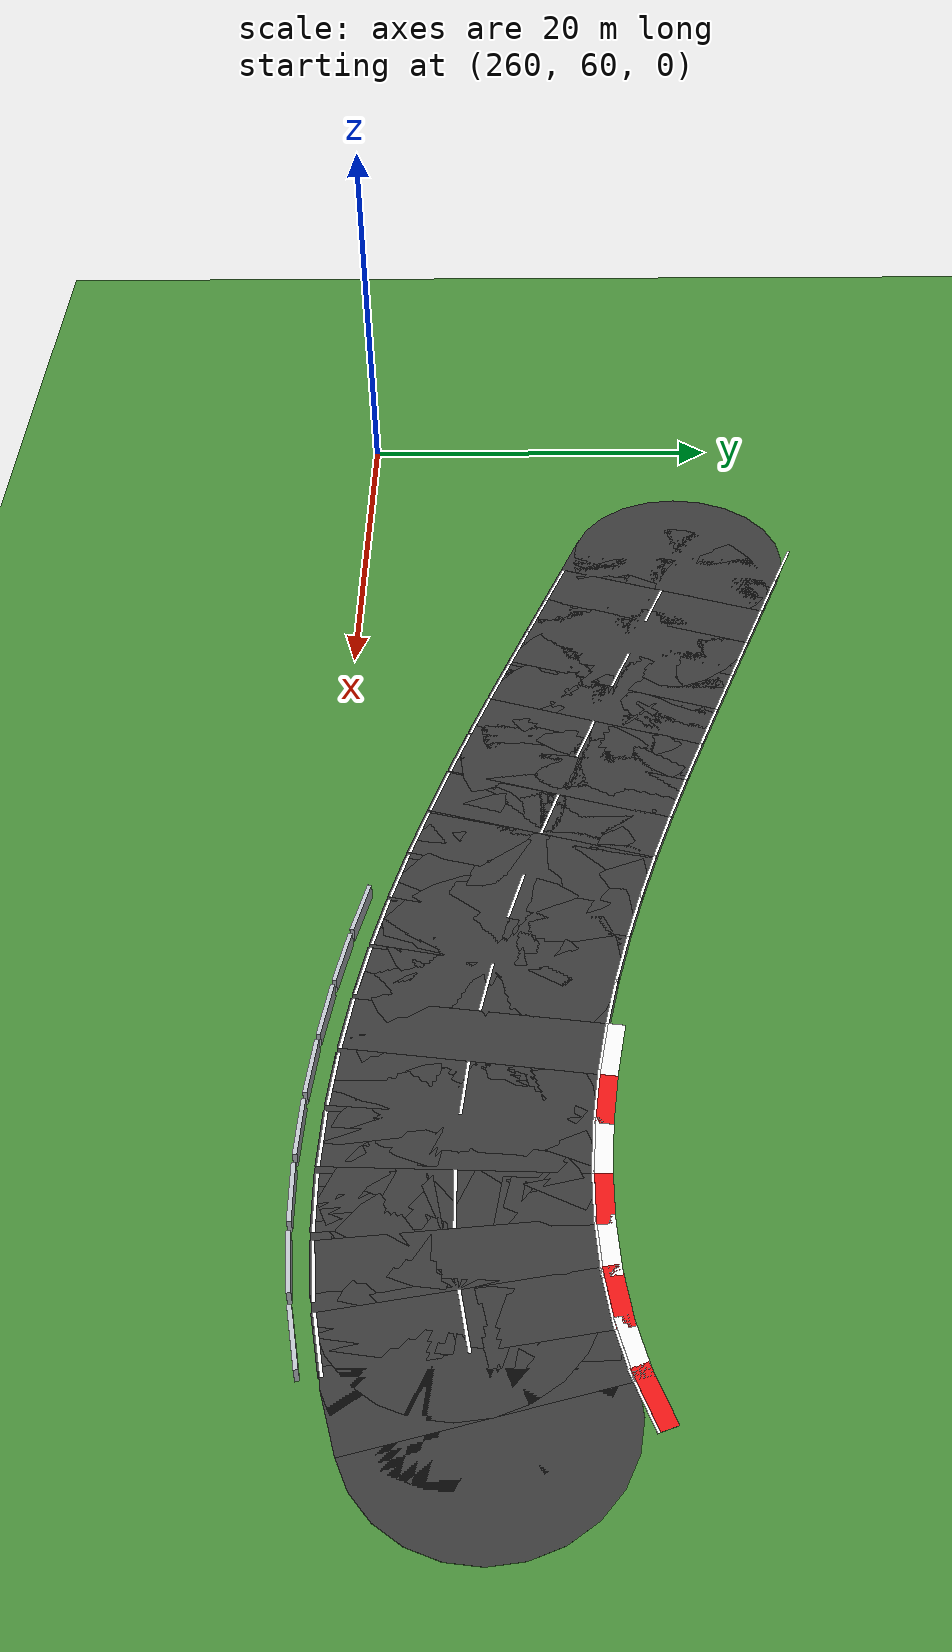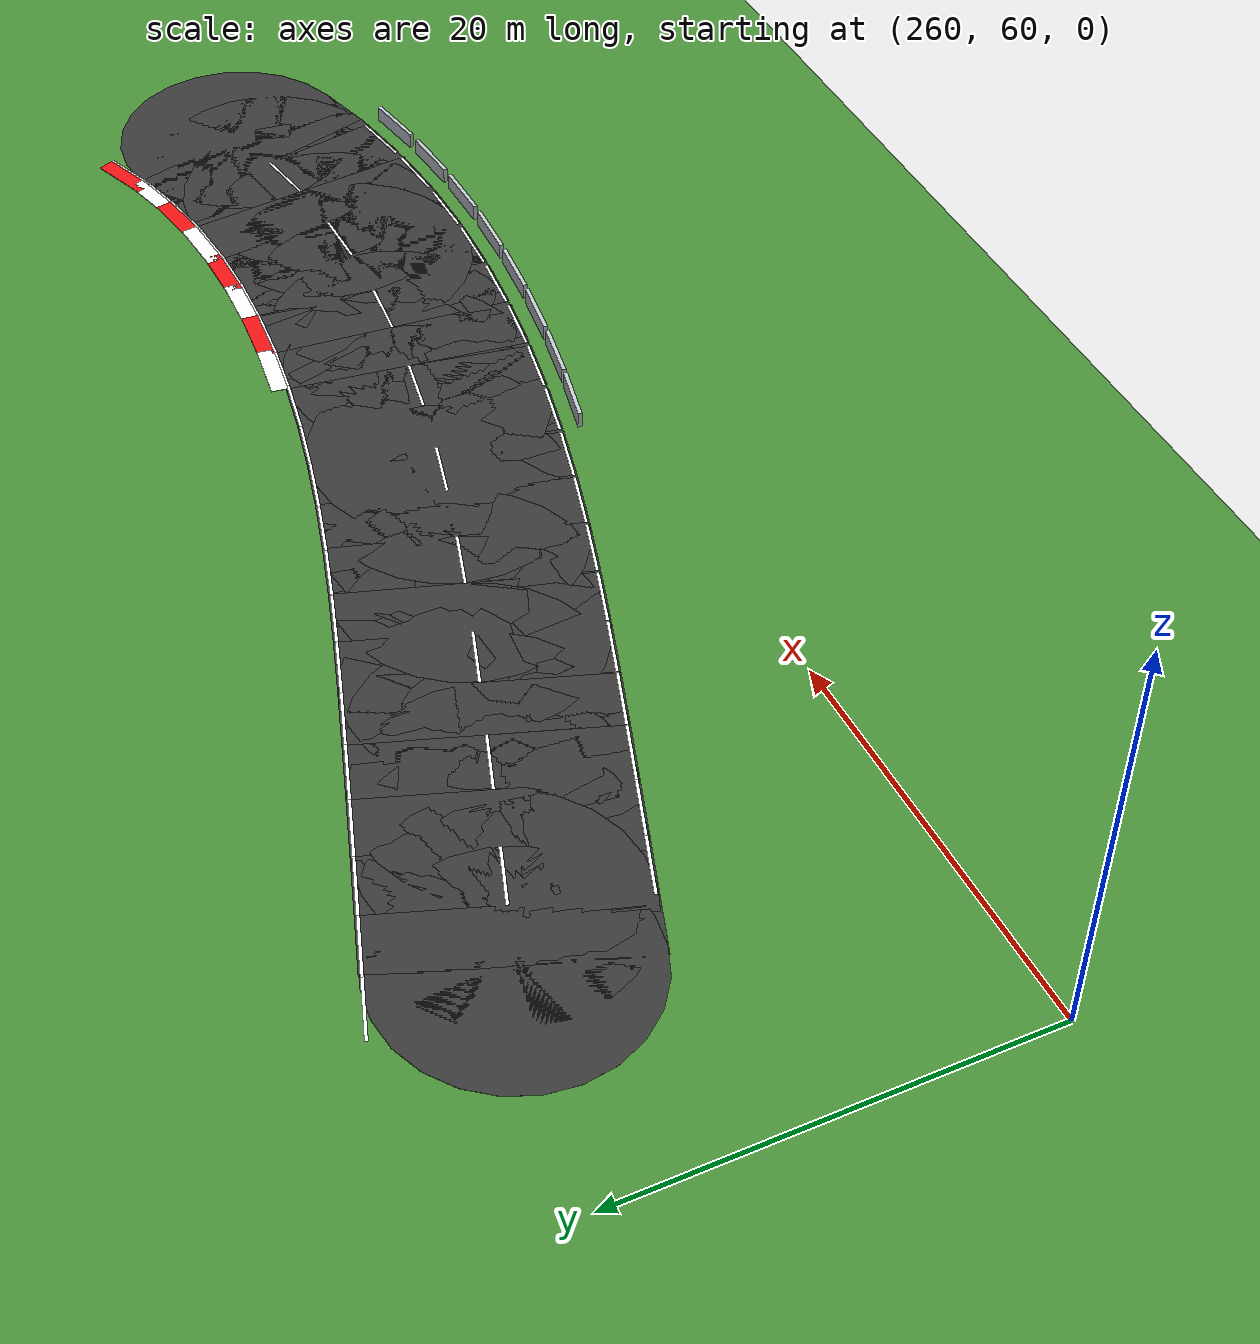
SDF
<sdf version="1.6">
 <world name="sem_silesia_ring_2026">
  <model name="ground_plane">
   <static>true</static>
   <link name="link">
    <collision name="collision">
     <geometry><plane><normal>0 0 1</normal><size>1200 1200</size></plane></geometry>
     <surface><friction><ode><mu>0.6</mu><mu2>0.6</mu2></ode></friction></surface>
    </collision>
    <visual name="visual">
     <geometry><plane><normal>0 0 1</normal><size>1200 1200</size></plane></geometry>
     <material><ambient>0.28 0.55 0.22 1</ambient><diffuse>0.28 0.55 0.22 1</diffuse></material>
    </visual>
   </link>
  </model>
  <model name="wl_L_s118">
   <static>true</static>
   <pose>271.6509 83.9622 0.0070 0 0 -0.3440</pose>
   <link name="link">
    <visual name="v">
     <geometry><box><size>3.0025 0.1500 0.0080</size></box></geometry>
     <material><ambient>0.95 0.95 0.95 1</ambient><diffuse>0.95 0.95 0.95 1</diffuse></material>
    </visual>
   </link>
  </model>
  <model name="road_s119">
   <static>true</static>
   <pose>272.5056 77.4449 0.0030 0 0 -0.3422</pose>
   <link name="link">
    <visual name="v">
     <geometry><box><size>3.0025 12.0000 0.0060</size></box></geometry>
     <material><ambient>0.22 0.22 0.22 1</ambient><diffuse>0.22 0.22 0.22 1</diffuse></material>
    </visual>
    <collision name="c">
     <geometry><box><size>3.0025 12.0000 0.0060</size></box></geometry>
     <surface><friction><ode><mu>0.9</mu><mu2>0.9</mu2></ode></friction></surface>
    </collision>
   </link>
  </model>
  <model name="road_jnt119">
   <static>true</static>
   <pose>271.0913 77.9486 0.0030 0 0 0</pose>
   <link name="link">
    <visual name="v">
     <geometry><cylinder><radius>6.0000</radius><length>0.0060</length></cylinder></geometry>
     <material><ambient>0.22 0.22 0.22 1</ambient><diffuse>0.22 0.22 0.22 1</diffuse></material>
    </visual>
    <collision name="c">
     <geometry><cylinder><radius>6.0000</radius><length>0.0060</length></cylinder></geometry>
     <surface><friction><ode><mu>0.9</mu><mu2>0.9</mu2></ode></friction></surface>
    </collision>
   </link>
  </model>
  <model name="wl_L_s119">
   <static>true</static>
   <pose>274.4684 82.9558 0.0070 0 0 -0.3422</pose>
   <link name="link">
    <visual name="v">
     <geometry><box><size>3.0025 0.1500 0.0080</size></box></geometry>
     <material><ambient>0.95 0.95 0.95 1</ambient><diffuse>0.95 0.95 0.95 1</diffuse></material>
    </visual>
   </link>
  </model>
  <model name="road_s120">
   <static>true</static>
   <pose>275.3350 76.4401 0.0030 0 0 -0.3403</pose>
   <link name="link">
    <visual name="v">
     <geometry><box><size>3.0025 12.0000 0.0060</size></box></geometry>
     <material><ambient>0.22 0.22 0.22 1</ambient><diffuse>0.22 0.22 0.22 1</diffuse></material>
    </visual>
    <collision name="c">
     <geometry><box><size>3.0025 12.0000 0.0060</size></box></geometry>
     <surface><friction><ode><mu>0.9</mu><mu2>0.9</mu2></ode></friction></surface>
    </collision>
   </link>
  </model>
  <model name="road_jnt120">
   <static>true</static>
   <pose>273.9198 76.9412 0.0030 0 0 0</pose>
   <link name="link">
    <visual name="v">
     <geometry><cylinder><radius>6.0000</radius><length>0.0060</length></cylinder></geometry>
     <material><ambient>0.22 0.22 0.22 1</ambient><diffuse>0.22 0.22 0.22 1</diffuse></material>
    </visual>
    <collision name="c">
     <geometry><cylinder><radius>6.0000</radius><length>0.0060</length></cylinder></geometry>
     <surface><friction><ode><mu>0.9</mu><mu2>0.9</mu2></ode></friction></surface>
    </collision>
   </link>
  </model>
  <model name="wl_L_s120">
   <static>true</static>
   <pose>277.2876 81.9546 0.0070 0 0 -0.3403</pose>
   <link name="link">
    <visual name="v">
     <geometry><box><size>3.0025 0.1500 0.0080</size></box></geometry>
     <material><ambient>0.95 0.95 0.95 1</ambient><diffuse>0.95 0.95 0.95 1</diffuse></material>
    </visual>
   </link>
  </model>
  <model name="wl_R_s120">
   <static>true</static>
   <pose>273.3824 70.9256 0.0070 0 0 -0.3403</pose>
   <link name="link">
    <visual name="v">
     <geometry><box><size>3.0025 0.1500 0.0080</size></box></geometry>
     <material><ambient>0.95 0.95 0.95 1</ambient><diffuse>0.95 0.95 0.95 1</diffuse></material>
    </visual>
   </link>
  </model>
  <model name="cd_s120">
   <static>true</static>
   <pose>275.3350 76.4401 0.0070 0 0 -0.3403</pose>
   <link name="link">
    <visual name="v">
     <geometry><box><size>3.0025 0.1500 0.0080</size></box></geometry>
     <material><ambient>0.95 0.95 0.95 1</ambient><diffuse>0.95 0.95 0.95 1</diffuse></material>
    </visual>
   </link>
  </model>
  <model name="road_s121">
   <static>true</static>
   <pose>278.1663 75.4406 0.0030 0 0 -0.3384</pose>
   <link name="link">
    <visual name="v">
     <geometry><box><size>3.0025 12.0000 0.0060</size></box></geometry>
     <material><ambient>0.22 0.22 0.22 1</ambient><diffuse>0.22 0.22 0.22 1</diffuse></material>
    </visual>
    <collision name="c">
     <geometry><box><size>3.0025 12.0000 0.0060</size></box></geometry>
     <surface><friction><ode><mu>0.9</mu><mu2>0.9</mu2></ode></friction></surface>
    </collision>
   </link>
  </model>
  <model name="road_jnt121">
   <static>true</static>
   <pose>276.7502 75.9390 0.0030 0 0 0</pose>
   <link name="link">
    <visual name="v">
     <geometry><cylinder><radius>6.0000</radius><length>0.0060</length></cylinder></geometry>
     <material><ambient>0.22 0.22 0.22 1</ambient><diffuse>0.22 0.22 0.22 1</diffuse></material>
    </visual>
    <collision name="c">
     <geometry><cylinder><radius>6.0000</radius><length>0.0060</length></cylinder></geometry>
     <surface><friction><ode><mu>0.9</mu><mu2>0.9</mu2></ode></friction></surface>
    </collision>
   </link>
  </model>
  <model name="wl_L_s121">
   <static>true</static>
   <pose>280.1085 80.9588 0.0070 0 0 -0.3384</pose>
   <link name="link">
    <visual name="v">
     <geometry><box><size>3.0025 0.1500 0.0080</size></box></geometry>
     <material><ambient>0.95 0.95 0.95 1</ambient><diffuse>0.95 0.95 0.95 1</diffuse></material>
    </visual>
   </link>
  </model>
  <model name="wl_R_s121">
   <static>true</static>
   <pose>276.2241 69.9224 0.0070 0 0 -0.3384</pose>
   <link name="link">
    <visual name="v">
     <geometry><box><size>3.0025 0.1500 0.0080</size></box></geometry>
     <material><ambient>0.95 0.95 0.95 1</ambient><diffuse>0.95 0.95 0.95 1</diffuse></material>
    </visual>
   </link>
  </model>
  <model name="road_s122">
   <static>true</static>
   <pose>280.9995 74.4465 0.0030 0 0 -0.3365</pose>
   <link name="link">
    <visual name="v">
     <geometry><box><size>3.0025 12.0000 0.0060</size></box></geometry>
     <material><ambient>0.22 0.22 0.22 1</ambient><diffuse>0.22 0.22 0.22 1</diffuse></material>
    </visual>
    <collision name="c">
     <geometry><box><size>3.0025 12.0000 0.0060</size></box></geometry>
     <surface><friction><ode><mu>0.9</mu><mu2>0.9</mu2></ode></friction></surface>
    </collision>
   </link>
  </model>
  <model name="road_jnt122">
   <static>true</static>
   <pose>279.5824 74.9422 0.0030 0 0 0</pose>
   <link name="link">
    <visual name="v">
     <geometry><cylinder><radius>6.0000</radius><length>0.0060</length></cylinder></geometry>
     <material><ambient>0.22 0.22 0.22 1</ambient><diffuse>0.22 0.22 0.22 1</diffuse></material>
    </visual>
    <collision name="c">
     <geometry><cylinder><radius>6.0000</radius><length>0.0060</length></cylinder></geometry>
     <surface><friction><ode><mu>0.9</mu><mu2>0.9</mu2></ode></friction></surface>
    </collision>
   </link>
  </model>
  <model name="wl_L_s122">
   <static>true</static>
   <pose>282.9311 79.9683 0.0070 0 0 -0.3365</pose>
   <link name="link">
    <visual name="v">
     <geometry><box><size>3.0025 0.1500 0.0080</size></box></geometry>
     <material><ambient>0.95 0.95 0.95 1</ambient><diffuse>0.95 0.95 0.95 1</diffuse></material>
    </visual>
   </link>
  </model>
  <model name="wl_R_s122">
   <static>true</static>
   <pose>279.0678 68.9246 0.0070 0 0 -0.3365</pose>
   <link name="link">
    <visual name="v">
     <geometry><box><size>3.0025 0.1500 0.0080</size></box></geometry>
     <material><ambient>0.95 0.95 0.95 1</ambient><diffuse>0.95 0.95 0.95 1</diffuse></material>
    </visual>
   </link>
  </model>
  <model name="cd_s122">
   <static>true</static>
   <pose>280.9995 74.4465 0.0070 0 0 -0.3365</pose>
   <link name="link">
    <visual name="v">
     <geometry><box><size>3.0025 0.1500 0.0080</size></box></geometry>
     <material><ambient>0.95 0.95 0.95 1</ambient><diffuse>0.95 0.95 0.95 1</diffuse></material>
    </visual>
   </link>
  </model>
  <model name="road_s123">
   <static>true</static>
   <pose>283.8349 73.4589 0.0030 0 0 -0.3338</pose>
   <link name="link">
    <visual name="v">
     <geometry><box><size>3.0025 12.0000 0.0060</size></box></geometry>
     <material><ambient>0.22 0.22 0.22 1</ambient><diffuse>0.22 0.22 0.22 1</diffuse></material>
    </visual>
    <collision name="c">
     <geometry><box><size>3.0025 12.0000 0.0060</size></box></geometry>
     <surface><friction><ode><mu>0.9</mu><mu2>0.9</mu2></ode></friction></surface>
    </collision>
   </link>
  </model>
  <model name="road_jnt123">
   <static>true</static>
   <pose>282.4165 73.9508 0.0030 0 0 0</pose>
   <link name="link">
    <visual name="v">
     <geometry><cylinder><radius>6.0000</radius><length>0.0060</length></cylinder></geometry>
     <material><ambient>0.22 0.22 0.22 1</ambient><diffuse>0.22 0.22 0.22 1</diffuse></material>
    </visual>
    <collision name="c">
     <geometry><cylinder><radius>6.0000</radius><length>0.0060</length></cylinder></geometry>
     <surface><friction><ode><mu>0.9</mu><mu2>0.9</mu2></ode></friction></surface>
    </collision>
   </link>
  </model>
  <model name="wl_L_s123">
   <static>true</static>
   <pose>285.7516 78.9860 0.0070 0 0 -0.3338</pose>
   <link name="link">
    <visual name="v">
     <geometry><box><size>3.0025 0.1500 0.0080</size></box></geometry>
     <material><ambient>0.95 0.95 0.95 1</ambient><diffuse>0.95 0.95 0.95 1</diffuse></material>
    </visual>
   </link>
  </model>
  <model name="wl_R_s123">
   <static>true</static>
   <pose>281.9183 67.9318 0.0070 0 0 -0.3338</pose>
   <link name="link">
    <visual name="v">
     <geometry><box><size>3.0025 0.1500 0.0080</size></box></geometry>
     <material><ambient>0.95 0.95 0.95 1</ambient><diffuse>0.95 0.95 0.95 1</diffuse></material>
    </visual>
   </link>
  </model>
  <model name="road_s124">
   <static>true</static>
   <pose>286.6751 72.4849 0.0030 0 0 -0.3270</pose>
   <link name="link">
    <visual name="v">
     <geometry><box><size>3.0025 12.0000 0.0060</size></box></geometry>
     <material><ambient>0.22 0.22 0.22 1</ambient><diffuse>0.22 0.22 0.22 1</diffuse></material>
    </visual>
    <collision name="c">
     <geometry><box><size>3.0025 12.0000 0.0060</size></box></geometry>
     <surface><friction><ode><mu>0.9</mu><mu2>0.9</mu2></ode></friction></surface>
    </collision>
   </link>
  </model>
  <model name="road_jnt124">
   <static>true</static>
   <pose>285.2533 72.9670 0.0030 0 0 0</pose>
   <link name="link">
    <visual name="v">
     <geometry><cylinder><radius>6.0000</radius><length>0.0060</length></cylinder></geometry>
     <material><ambient>0.22 0.22 0.22 1</ambient><diffuse>0.22 0.22 0.22 1</diffuse></material>
    </visual>
    <collision name="c">
     <geometry><cylinder><radius>6.0000</radius><length>0.0060</length></cylinder></geometry>
     <surface><friction><ode><mu>0.9</mu><mu2>0.9</mu2></ode></friction></surface>
    </collision>
   </link>
  </model>
  <model name="wl_L_s124">
   <static>true</static>
   <pose>288.5538 78.0250 0.0070 0 0 -0.3270</pose>
   <link name="link">
    <visual name="v">
     <geometry><box><size>3.0025 0.1500 0.0080</size></box></geometry>
     <material><ambient>0.95 0.95 0.95 1</ambient><diffuse>0.95 0.95 0.95 1</diffuse></material>
    </visual>
   </link>
  </model>
  <model name="wl_R_s124">
   <static>true</static>
   <pose>284.7963 66.9448 0.0070 0 0 -0.3270</pose>
   <link name="link">
    <visual name="v">
     <geometry><box><size>3.0025 0.1500 0.0080</size></box></geometry>
     <material><ambient>0.95 0.95 0.95 1</ambient><diffuse>0.95 0.95 0.95 1</diffuse></material>
    </visual>
   </link>
  </model>
  <model name="cd_s124">
   <static>true</static>
   <pose>286.6751 72.4849 0.0070 0 0 -0.3270</pose>
   <link name="link">
    <visual name="v">
     <geometry><box><size>3.0025 0.1500 0.0080</size></box></geometry>
     <material><ambient>0.95 0.95 0.95 1</ambient><diffuse>0.95 0.95 0.95 1</diffuse></material>
    </visual>
   </link>
  </model>
  <model name="road_s125">
   <static>true</static>
   <pose>289.5242 71.5375 0.0030 0 0 -0.3151</pose>
   <link name="link">
    <visual name="v">
     <geometry><box><size>3.0025 12.0000 0.0060</size></box></geometry>
     <material><ambient>0.22 0.22 0.22 1</ambient><diffuse>0.22 0.22 0.22 1</diffuse></material>
    </visual>
    <collision name="c">
     <geometry><box><size>3.0025 12.0000 0.0060</size></box></geometry>
     <surface><friction><ode><mu>0.9</mu><mu2>0.9</mu2></ode></friction></surface>
    </collision>
   </link>
  </model>
  <model name="road_jnt125">
   <static>true</static>
   <pose>288.0968 72.0027 0.0030 0 0 0</pose>
   <link name="link">
    <visual name="v">
     <geometry><cylinder><radius>6.0000</radius><length>0.0060</length></cylinder></geometry>
     <material><ambient>0.22 0.22 0.22 1</ambient><diffuse>0.22 0.22 0.22 1</diffuse></material>
    </visual>
    <collision name="c">
     <geometry><cylinder><radius>6.0000</radius><length>0.0060</length></cylinder></geometry>
     <surface><friction><ode><mu>0.9</mu><mu2>0.9</mu2></ode></friction></surface>
    </collision>
   </link>
  </model>
  <model name="wl_L_s125">
   <static>true</static>
   <pose>291.3370 77.0995 0.0070 0 0 -0.3151</pose>
   <link name="link">
    <visual name="v">
     <geometry><box><size>3.0025 0.1500 0.0080</size></box></geometry>
     <material><ambient>0.95 0.95 0.95 1</ambient><diffuse>0.95 0.95 0.95 1</diffuse></material>
    </visual>
   </link>
  </model>
  <model name="wl_R_s125">
   <static>true</static>
   <pose>287.7114 65.9755 0.0070 0 0 -0.3151</pose>
   <link name="link">
    <visual name="v">
     <geometry><box><size>3.0025 0.1500 0.0080</size></box></geometry>
     <material><ambient>0.95 0.95 0.95 1</ambient><diffuse>0.95 0.95 0.95 1</diffuse></material>
    </visual>
   </link>
  </model>
  <model name="road_s126">
   <static>true</static>
   <pose>292.3865 70.6313 0.0030 0 0 -0.2981</pose>
   <link name="link">
    <visual name="v">
     <geometry><box><size>3.0025 12.0000 0.0060</size></box></geometry>
     <material><ambient>0.22 0.22 0.22 1</ambient><diffuse>0.22 0.22 0.22 1</diffuse></material>
    </visual>
    <collision name="c">
     <geometry><box><size>3.0025 12.0000 0.0060</size></box></geometry>
     <surface><friction><ode><mu>0.9</mu><mu2>0.9</mu2></ode></friction></surface>
    </collision>
   </link>
  </model>
  <model name="road_jnt126">
   <static>true</static>
   <pose>290.9515 71.0723 0.0030 0 0 0</pose>
   <link name="link">
    <visual name="v">
     <geometry><cylinder><radius>6.0000</radius><length>0.0060</length></cylinder></geometry>
     <material><ambient>0.22 0.22 0.22 1</ambient><diffuse>0.22 0.22 0.22 1</diffuse></material>
    </visual>
    <collision name="c">
     <geometry><cylinder><radius>6.0000</radius><length>0.0060</length></cylinder></geometry>
     <surface><friction><ode><mu>0.9</mu><mu2>0.9</mu2></ode></friction></surface>
    </collision>
   </link>
  </model>
  <model name="wl_L_s126">
   <static>true</static>
   <pose>294.1050 76.2232 0.0070 0 0 -0.2981</pose>
   <link name="link">
    <visual name="v">
     <geometry><box><size>3.0025 0.1500 0.0080</size></box></geometry>
     <material><ambient>0.95 0.95 0.95 1</ambient><diffuse>0.95 0.95 0.95 1</diffuse></material>
    </visual>
   </link>
  </model>
  <model name="wl_R_s126">
   <static>true</static>
   <pose>290.6681 65.0394 0.0070 0 0 -0.2981</pose>
   <link name="link">
    <visual name="v">
     <geometry><box><size>3.0025 0.1500 0.0080</size></box></geometry>
     <material><ambient>0.95 0.95 0.95 1</ambient><diffuse>0.95 0.95 0.95 1</diffuse></material>
    </visual>
   </link>
  </model>
  <model name="cd_s126">
   <static>true</static>
   <pose>292.3865 70.6313 0.0070 0 0 -0.2981</pose>
   <link name="link">
    <visual name="v">
     <geometry><box><size>3.0025 0.1500 0.0080</size></box></geometry>
     <material><ambient>0.95 0.95 0.95 1</ambient><diffuse>0.95 0.95 0.95 1</diffuse></material>
    </visual>
   </link>
  </model>
  <model name="road_s127">
   <static>true</static>
   <pose>295.2659 69.7810 0.0030 0 0 -0.2762</pose>
   <link name="link">
    <visual name="v">
     <geometry><box><size>3.0025 12.0000 0.0060</size></box></geometry>
     <material><ambient>0.22 0.22 0.22 1</ambient><diffuse>0.22 0.22 0.22 1</diffuse></material>
    </visual>
    <collision name="c">
     <geometry><box><size>3.0025 12.0000 0.0060</size></box></geometry>
     <surface><friction><ode><mu>0.9</mu><mu2>0.9</mu2></ode></friction></surface>
    </collision>
   </link>
  </model>
  <model name="road_jnt127">
   <static>true</static>
   <pose>293.8216 70.1903 0.0030 0 0 0</pose>
   <link name="link">
    <visual name="v">
     <geometry><cylinder><radius>6.0000</radius><length>0.0060</length></cylinder></geometry>
     <material><ambient>0.22 0.22 0.22 1</ambient><diffuse>0.22 0.22 0.22 1</diffuse></material>
    </visual>
    <collision name="c">
     <geometry><cylinder><radius>6.0000</radius><length>0.0060</length></cylinder></geometry>
     <surface><friction><ode><mu>0.9</mu><mu2>0.9</mu2></ode></friction></surface>
    </collision>
   </link>
  </model>
  <model name="wl_L_s127">
   <static>true</static>
   <pose>296.8611 75.4093 0.0070 0 0 -0.2762</pose>
   <link name="link">
    <visual name="v">
     <geometry><box><size>3.0025 0.1500 0.0080</size></box></geometry>
     <material><ambient>0.95 0.95 0.95 1</ambient><diffuse>0.95 0.95 0.95 1</diffuse></material>
    </visual>
   </link>
  </model>
  <model name="wl_R_s127">
   <static>true</static>
   <pose>293.6707 64.1527 0.0070 0 0 -0.2762</pose>
   <link name="link">
    <visual name="v">
     <geometry><box><size>3.0025 0.1500 0.0080</size></box></geometry>
     <material><ambient>0.95 0.95 0.95 1</ambient><diffuse>0.95 0.95 0.95 1</diffuse></material>
    </visual>
   </link>
  </model>
  <model name="road_s128">
   <static>true</static>
   <pose>298.1651 69.0014 0.0030 0 0 -0.2492</pose>
   <link name="link">
    <visual name="v">
     <geometry><box><size>3.0024 12.0000 0.0060</size></box></geometry>
     <material><ambient>0.22 0.22 0.22 1</ambient><diffuse>0.22 0.22 0.22 1</diffuse></material>
    </visual>
    <collision name="c">
     <geometry><box><size>3.0024 12.0000 0.0060</size></box></geometry>
     <surface><friction><ode><mu>0.9</mu><mu2>0.9</mu2></ode></friction></surface>
    </collision>
   </link>
  </model>
  <model name="road_jnt128">
   <static>true</static>
   <pose>296.7102 69.3716 0.0030 0 0 0</pose>
   <link name="link">
    <visual name="v">
     <geometry><cylinder><radius>6.0000</radius><length>0.0060</length></cylinder></geometry>
     <material><ambient>0.22 0.22 0.22 1</ambient><diffuse>0.22 0.22 0.22 1</diffuse></material>
    </visual>
    <collision name="c">
     <geometry><cylinder><radius>6.0000</radius><length>0.0060</length></cylinder></geometry>
     <surface><friction><ode><mu>0.9</mu><mu2>0.9</mu2></ode></friction></surface>
    </collision>
   </link>
  </model>
  <model name="wl_L_s128">
   <static>true</static>
   <pose>299.6078 74.6707 0.0070 0 0 -0.2492</pose>
   <link name="link">
    <visual name="v">
     <geometry><box><size>3.0024 0.1500 0.0080</size></box></geometry>
     <material><ambient>0.95 0.95 0.95 1</ambient><diffuse>0.95 0.95 0.95 1</diffuse></material>
    </visual>
   </link>
  </model>
  <model name="wl_R_s128">
   <static>true</static>
   <pose>296.7224 63.3321 0.0070 0 0 -0.2492</pose>
   <link name="link">
    <visual name="v">
     <geometry><box><size>3.0024 0.1500 0.0080</size></box></geometry>
     <material><ambient>0.95 0.95 0.95 1</ambient><diffuse>0.95 0.95 0.95 1</diffuse></material>
    </visual>
   </link>
  </model>
  <model name="cd_s128">
   <static>true</static>
   <pose>298.1651 69.0014 0.0070 0 0 -0.2492</pose>
   <link name="link">
    <visual name="v">
     <geometry><box><size>3.0024 0.1500 0.0080</size></box></geometry>
     <material><ambient>0.95 0.95 0.95 1</ambient><diffuse>0.95 0.95 0.95 1</diffuse></material>
    </visual>
   </link>
  </model>
  <model name="road_s129">
   <static>true</static>
   <pose>301.0858 68.3076 0.0030 0 0 -0.2173</pose>
   <link name="link">
    <visual name="v">
     <geometry><box><size>3.0024 12.0000 0.0060</size></box></geometry>
     <material><ambient>0.22 0.22 0.22 1</ambient><diffuse>0.22 0.22 0.22 1</diffuse></material>
    </visual>
    <collision name="c">
     <geometry><box><size>3.0024 12.0000 0.0060</size></box></geometry>
     <surface><friction><ode><mu>0.9</mu><mu2>0.9</mu2></ode></friction></surface>
    </collision>
   </link>
  </model>
  <model name="road_jnt129">
   <static>true</static>
   <pose>299.6199 68.6312 0.0030 0 0 0</pose>
   <link name="link">
    <visual name="v">
     <geometry><cylinder><radius>6.0000</radius><length>0.0060</length></cylinder></geometry>
     <material><ambient>0.22 0.22 0.22 1</ambient><diffuse>0.22 0.22 0.22 1</diffuse></material>
    </visual>
    <collision name="c">
     <geometry><cylinder><radius>6.0000</radius><length>0.0060</length></cylinder></geometry>
     <surface><friction><ode><mu>0.9</mu><mu2>0.9</mu2></ode></friction></surface>
    </collision>
   </link>
  </model>
  <model name="wl_L_s129">
   <static>true</static>
   <pose>302.3468 74.0200 0.0070 0 0 -0.2173</pose>
   <link name="link">
    <visual name="v">
     <geometry><box><size>3.0024 0.1500 0.0080</size></box></geometry>
     <material><ambient>0.95 0.95 0.95 1</ambient><diffuse>0.95 0.95 0.95 1</diffuse></material>
    </visual>
   </link>
  </model>
  <model name="wl_R_s129">
   <static>true</static>
   <pose>299.8248 62.5951 0.0070 0 0 -0.2173</pose>
   <link name="link">
    <visual name="v">
     <geometry><box><size>3.0024 0.1500 0.0080</size></box></geometry>
     <material><ambient>0.95 0.95 0.95 1</ambient><diffuse>0.95 0.95 0.95 1</diffuse></material>
    </visual>
   </link>
  </model>
  <model name="arm_outR_129">
   <static>true</static>
   <pose>299.6200 61.6674 0.4000 0 0 -0.2173</pose>
   <link name="link">
    <visual name="v">
     <geometry><box><size>3.0024 0.2000 0.8000</size></box></geometry>
     <material><ambient>0.75 0.77 0.80 1</ambient><diffuse>0.75 0.77 0.80 1</diffuse></material>
    </visual>
    <collision name="c">
     <geometry><box><size>3.0024 0.2000 0.8000</size></box></geometry>
     <surface><friction><ode><mu>0.8</mu><mu2>0.8</mu2></ode></friction></surface>
    </collision>
   </link>
  </model>
  <model name="road_s130">
   <static>true</static>
   <pose>304.0285 67.7144 0.0030 0 0 -0.1806</pose>
   <link name="link">
    <visual name="v">
     <geometry><box><size>3.0023 12.0000 0.0060</size></box></geometry>
     <material><ambient>0.22 0.22 0.22 1</ambient><diffuse>0.22 0.22 0.22 1</diffuse></material>
    </visual>
    <collision name="c">
     <geometry><box><size>3.0023 12.0000 0.0060</size></box></geometry>
     <surface><friction><ode><mu>0.9</mu><mu2>0.9</mu2></ode></friction></surface>
    </collision>
   </link>
  </model>
  <model name="road_jnt130">
   <static>true</static>
   <pose>302.5517 67.9840 0.0030 0 0 0</pose>
   <link name="link">
    <visual name="v">
     <geometry><cylinder><radius>6.0000</radius><length>0.0060</length></cylinder></geometry>
     <material><ambient>0.22 0.22 0.22 1</ambient><diffuse>0.22 0.22 0.22 1</diffuse></material>
    </visual>
    <collision name="c">
     <geometry><cylinder><radius>6.0000</radius><length>0.0060</length></cylinder></geometry>
     <surface><friction><ode><mu>0.9</mu><mu2>0.9</mu2></ode></friction></surface>
    </collision>
   </link>
  </model>
  <model name="wl_L_s130">
   <static>true</static>
   <pose>305.0790 73.4693 0.0070 0 0 -0.1806</pose>
   <link name="link">
    <visual name="v">
     <geometry><box><size>3.0023 0.1500 0.0080</size></box></geometry>
     <material><ambient>0.95 0.95 0.95 1</ambient><diffuse>0.95 0.95 0.95 1</diffuse></material>
    </visual>
   </link>
  </model>
  <model name="wl_R_s130">
   <static>true</static>
   <pose>302.9780 61.9595 0.0070 0 0 -0.1806</pose>
   <link name="link">
    <visual name="v">
     <geometry><box><size>3.0023 0.1500 0.0080</size></box></geometry>
     <material><ambient>0.95 0.95 0.95 1</ambient><diffuse>0.95 0.95 0.95 1</diffuse></material>
    </visual>
   </link>
  </model>
  <model name="cd_s130">
   <static>true</static>
   <pose>304.0285 67.7144 0.0070 0 0 -0.1806</pose>
   <link name="link">
    <visual name="v">
     <geometry><box><size>3.0023 0.1500 0.0080</size></box></geometry>
     <material><ambient>0.95 0.95 0.95 1</ambient><diffuse>0.95 0.95 0.95 1</diffuse></material>
    </visual>
   </link>
  </model>
  <model name="arm_outR_130">
   <static>true</static>
   <pose>302.8074 61.0249 0.4000 0 0 -0.1806</pose>
   <link name="link">
    <visual name="v">
     <geometry><box><size>3.0023 0.2000 0.8000</size></box></geometry>
     <material><ambient>0.75 0.77 0.80 1</ambient><diffuse>0.75 0.77 0.80 1</diffuse></material>
    </visual>
    <collision name="c">
     <geometry><box><size>3.0023 0.2000 0.8000</size></box></geometry>
     <surface><friction><ode><mu>0.8</mu><mu2>0.8</mu2></ode></friction></surface>
    </collision>
   </link>
  </model>
  <model name="road_s131">
   <static>true</static>
   <pose>306.9919 67.2363 0.0030 0 0 -0.1393</pose>
   <link name="link">
    <visual name="v">
     <geometry><box><size>3.0023 12.0000 0.0060</size></box></geometry>
     <material><ambient>0.22 0.22 0.22 1</ambient><diffuse>0.22 0.22 0.22 1</diffuse></material>
    </visual>
    <collision name="c">
     <geometry><box><size>3.0023 12.0000 0.0060</size></box></geometry>
     <surface><friction><ode><mu>0.9</mu><mu2>0.9</mu2></ode></friction></surface>
    </collision>
   </link>
  </model>
  <model name="road_jnt131">
   <static>true</static>
   <pose>305.5053 67.4448 0.0030 0 0 0</pose>
   <link name="link">
    <visual name="v">
     <geometry><cylinder><radius>6.0000</radius><length>0.0060</length></cylinder></geometry>
     <material><ambient>0.22 0.22 0.22 1</ambient><diffuse>0.22 0.22 0.22 1</diffuse></material>
    </visual>
    <collision name="c">
     <geometry><cylinder><radius>6.0000</radius><length>0.0060</length></cylinder></geometry>
     <surface><friction><ode><mu>0.9</mu><mu2>0.9</mu2></ode></friction></surface>
    </collision>
   </link>
  </model>
  <model name="wl_L_s131">
   <static>true</static>
   <pose>307.8044 73.0296 0.0070 0 0 -0.1393</pose>
   <link name="link">
    <visual name="v">
     <geometry><box><size>3.0023 0.1500 0.0080</size></box></geometry>
     <material><ambient>0.95 0.95 0.95 1</ambient><diffuse>0.95 0.95 0.95 1</diffuse></material>
    </visual>
   </link>
  </model>
  <model name="wl_R_s131">
   <static>true</static>
   <pose>306.1794 61.4430 0.0070 0 0 -0.1393</pose>
   <link name="link">
    <visual name="v">
     <geometry><box><size>3.0023 0.1500 0.0080</size></box></geometry>
     <material><ambient>0.95 0.95 0.95 1</ambient><diffuse>0.95 0.95 0.95 1</diffuse></material>
    </visual>
   </link>
  </model>
  <model name="kerb_L_131">
   <static>true</static>
   <pose>307.8669 73.4753 0.0120 0 0 -0.1393</pose>
   <link name="link">
    <visual name="v">
     <geometry><box><size>3.0023 0.8000 0.0160</size></box></geometry>
     <material><ambient>0.95 0.95 0.95 1</ambient><diffuse>0.95 0.95 0.95 1</diffuse></material>
    </visual>
   </link>
  </model>
  <model name="arm_outR_131">
   <static>true</static>
   <pose>306.0475 60.5022 0.4000 0 0 -0.1393</pose>
   <link name="link">
    <visual name="v">
     <geometry><box><size>3.0023 0.2000 0.8000</size></box></geometry>
     <material><ambient>0.75 0.77 0.80 1</ambient><diffuse>0.75 0.77 0.80 1</diffuse></material>
    </visual>
    <collision name="c">
     <geometry><box><size>3.0023 0.2000 0.8000</size></box></geometry>
     <surface><friction><ode><mu>0.8</mu><mu2>0.8</mu2></ode></friction></surface>
    </collision>
   </link>
  </model>
  <model name="road_s132">
   <static>true</static>
   <pose>309.9731 66.8886 0.0030 0 0 -0.0929</pose>
   <link name="link">
    <visual name="v">
     <geometry><box><size>3.0022 12.0000 0.0060</size></box></geometry>
     <material><ambient>0.22 0.22 0.22 1</ambient><diffuse>0.22 0.22 0.22 1</diffuse></material>
    </visual>
    <collision name="c">
     <geometry><box><size>3.0022 12.0000 0.0060</size></box></geometry>
     <surface><friction><ode><mu>0.9</mu><mu2>0.9</mu2></ode></friction></surface>
    </collision>
   </link>
  </model>
  <model name="road_jnt132">
   <static>true</static>
   <pose>308.4785 67.0279 0.0030 0 0 0</pose>
   <link name="link">
    <visual name="v">
     <geometry><cylinder><radius>6.0000</radius><length>0.0060</length></cylinder></geometry>
     <material><ambient>0.22 0.22 0.22 1</ambient><diffuse>0.22 0.22 0.22 1</diffuse></material>
    </visual>
    <collision name="c">
     <geometry><cylinder><radius>6.0000</radius><length>0.0060</length></cylinder></geometry>
     <surface><friction><ode><mu>0.9</mu><mu2>0.9</mu2></ode></friction></surface>
    </collision>
   </link>
  </model>
  <model name="wl_L_s132">
   <static>true</static>
   <pose>310.5159 72.7133 0.0070 0 0 -0.0929</pose>
   <link name="link">
    <visual name="v">
     <geometry><box><size>3.0022 0.1500 0.0080</size></box></geometry>
     <material><ambient>0.95 0.95 0.95 1</ambient><diffuse>0.95 0.95 0.95 1</diffuse></material>
    </visual>
   </link>
  </model>
  <model name="wl_R_s132">
   <static>true</static>
   <pose>309.4303 61.0638 0.0070 0 0 -0.0929</pose>
   <link name="link">
    <visual name="v">
     <geometry><box><size>3.0022 0.1500 0.0080</size></box></geometry>
     <material><ambient>0.95 0.95 0.95 1</ambient><diffuse>0.95 0.95 0.95 1</diffuse></material>
    </visual>
   </link>
  </model>
  <model name="cd_s132">
   <static>true</static>
   <pose>309.9731 66.8886 0.0070 0 0 -0.0929</pose>
   <link name="link">
    <visual name="v">
     <geometry><box><size>3.0022 0.1500 0.0080</size></box></geometry>
     <material><ambient>0.95 0.95 0.95 1</ambient><diffuse>0.95 0.95 0.95 1</diffuse></material>
    </visual>
   </link>
  </model>
  <model name="kerb_L_132">
   <static>true</static>
   <pose>310.5577 73.1614 0.0120 0 0 -0.0929</pose>
   <link name="link">
    <visual name="v">
     <geometry><box><size>3.0022 0.8000 0.0160</size></box></geometry>
     <material><ambient>0.92 0.08 0.08 1</ambient><diffuse>0.92 0.08 0.08 1</diffuse></material>
    </visual>
   </link>
  </model>
  <model name="arm_outR_132">
   <static>true</static>
   <pose>309.3422 60.1179 0.4000 0 0 -0.0929</pose>
   <link name="link">
    <visual name="v">
     <geometry><box><size>3.0022 0.2000 0.8000</size></box></geometry>
     <material><ambient>0.75 0.77 0.80 1</ambient><diffuse>0.75 0.77 0.80 1</diffuse></material>
    </visual>
    <collision name="c">
     <geometry><box><size>3.0022 0.2000 0.8000</size></box></geometry>
     <surface><friction><ode><mu>0.8</mu><mu2>0.8</mu2></ode></friction></surface>
    </collision>
   </link>
  </model>
  <model name="road_s133">
   <static>true</static>
   <pose>312.9677 66.6902 0.0030 0 0 -0.0394</pose>
   <link name="link">
    <visual name="v">
     <geometry><box><size>3.0021 12.0000 0.0060</size></box></geometry>
     <material><ambient>0.22 0.22 0.22 1</ambient><diffuse>0.22 0.22 0.22 1</diffuse></material>
    </visual>
    <collision name="c">
     <geometry><box><size>3.0021 12.0000 0.0060</size></box></geometry>
     <surface><friction><ode><mu>0.9</mu><mu2>0.9</mu2></ode></friction></surface>
    </collision>
   </link>
  </model>
  <model name="road_jnt133">
   <static>true</static>
   <pose>311.4678 66.7493 0.0030 0 0 0</pose>
   <link name="link">
    <visual name="v">
     <geometry><cylinder><radius>6.0000</radius><length>0.0060</length></cylinder></geometry>
     <material><ambient>0.22 0.22 0.22 1</ambient><diffuse>0.22 0.22 0.22 1</diffuse></material>
    </visual>
    <collision name="c">
     <geometry><cylinder><radius>6.0000</radius><length>0.0060</length></cylinder></geometry>
     <surface><friction><ode><mu>0.9</mu><mu2>0.9</mu2></ode></friction></surface>
    </collision>
   </link>
  </model>
  <model name="wl_L_s133">
   <static>true</static>
   <pose>313.1978 72.5357 0.0070 0 0 -0.0394</pose>
   <link name="link">
    <visual name="v">
     <geometry><box><size>3.0021 0.1500 0.0080</size></box></geometry>
     <material><ambient>0.95 0.95 0.95 1</ambient><diffuse>0.95 0.95 0.95 1</diffuse></material>
    </visual>
   </link>
  </model>
  <model name="wl_R_s133">
   <static>true</static>
   <pose>312.7375 60.8448 0.0070 0 0 -0.0394</pose>
   <link name="link">
    <visual name="v">
     <geometry><box><size>3.0021 0.1500 0.0080</size></box></geometry>
     <material><ambient>0.95 0.95 0.95 1</ambient><diffuse>0.95 0.95 0.95 1</diffuse></material>
    </visual>
   </link>
  </model>
  <model name="kerb_L_133">
   <static>true</static>
   <pose>313.2155 72.9853 0.0120 0 0 -0.0394</pose>
   <link name="link">
    <visual name="v">
     <geometry><box><size>3.0021 0.8000 0.0160</size></box></geometry>
     <material><ambient>0.95 0.95 0.95 1</ambient><diffuse>0.95 0.95 0.95 1</diffuse></material>
    </visual>
   </link>
  </model>
  <model name="arm_outR_133">
   <static>true</static>
   <pose>312.7001 59.8955 0.4000 0 0 -0.0394</pose>
   <link name="link">
    <visual name="v">
     <geometry><box><size>3.0021 0.2000 0.8000</size></box></geometry>
     <material><ambient>0.75 0.77 0.80 1</ambient><diffuse>0.75 0.77 0.80 1</diffuse></material>
    </visual>
    <collision name="c">
     <geometry><box><size>3.0021 0.2000 0.8000</size></box></geometry>
     <surface><friction><ode><mu>0.8</mu><mu2>0.8</mu2></ode></friction></surface>
    </collision>
   </link>
  </model>
  <model name="road_s134">
   <static>true</static>
   <pose>315.9682 66.6650 0.0030 0 0 0.0226</pose>
   <link name="link">
    <visual name="v">
     <geometry><box><size>3.0020 12.0000 0.0060</size></box></geometry>
     <material><ambient>0.22 0.22 0.22 1</ambient><diffuse>0.22 0.22 0.22 1</diffuse></material>
    </visual>
    <collision name="c">
     <geometry><box><size>3.0020 12.0000 0.0060</size></box></geometry>
     <surface><friction><ode><mu>0.9</mu><mu2>0.9</mu2></ode></friction></surface>
    </collision>
   </link>
  </model>
  <model name="road_jnt134">
   <static>true</static>
   <pose>314.4676 66.6312 0.0030 0 0 0</pose>
   <link name="link">
    <visual name="v">
     <geometry><cylinder><radius>6.0000</radius><length>0.0060</length></cylinder></geometry>
     <material><ambient>0.22 0.22 0.22 1</ambient><diffuse>0.22 0.22 0.22 1</diffuse></material>
    </visual>
    <collision name="c">
     <geometry><cylinder><radius>6.0000</radius><length>0.0060</length></cylinder></geometry>
     <surface><friction><ode><mu>0.9</mu><mu2>0.9</mu2></ode></friction></surface>
    </collision>
   </link>
  </model>
  <model name="wl_L_s134">
   <static>true</static>
   <pose>315.8362 72.5135 0.0070 0 0 0.0226</pose>
   <link name="link">
    <visual name="v">
     <geometry><box><size>3.0020 0.1500 0.0080</size></box></geometry>
     <material><ambient>0.95 0.95 0.95 1</ambient><diffuse>0.95 0.95 0.95 1</diffuse></material>
    </visual>
   </link>
  </model>
  <model name="wl_R_s134">
   <static>true</static>
   <pose>316.1001 60.8165 0.0070 0 0 0.0226</pose>
   <link name="link">
    <visual name="v">
     <geometry><box><size>3.0020 0.1500 0.0080</size></box></geometry>
     <material><ambient>0.95 0.95 0.95 1</ambient><diffuse>0.95 0.95 0.95 1</diffuse></material>
    </visual>
   </link>
  </model>
  <model name="cd_s134">
   <static>true</static>
   <pose>315.9682 66.6650 0.0070 0 0 0.0226</pose>
   <link name="link">
    <visual name="v">
     <geometry><box><size>3.0020 0.1500 0.0080</size></box></geometry>
     <material><ambient>0.95 0.95 0.95 1</ambient><diffuse>0.95 0.95 0.95 1</diffuse></material>
    </visual>
   </link>
  </model>
  <model name="kerb_L_134">
   <static>true</static>
   <pose>315.8261 72.9634 0.0120 0 0 0.0226</pose>
   <link name="link">
    <visual name="v">
     <geometry><box><size>3.0020 0.8000 0.0160</size></box></geometry>
     <material><ambient>0.92 0.08 0.08 1</ambient><diffuse>0.92 0.08 0.08 1</diffuse></material>
    </visual>
   </link>
  </model>
  <model name="arm_outR_134">
   <static>true</static>
   <pose>316.1216 59.8668 0.4000 0 0 0.0226</pose>
   <link name="link">
    <visual name="v">
     <geometry><box><size>3.0020 0.2000 0.8000</size></box></geometry>
     <material><ambient>0.75 0.77 0.80 1</ambient><diffuse>0.75 0.77 0.80 1</diffuse></material>
    </visual>
    <collision name="c">
     <geometry><box><size>3.0020 0.2000 0.8000</size></box></geometry>
     <surface><friction><ode><mu>0.8</mu><mu2>0.8</mu2></ode></friction></surface>
    </collision>
   </link>
  </model>
  <model name="road_s135">
   <static>true</static>
   <pose>318.9631 66.8398 0.0030 0 0 0.0940</pose>
   <link name="link">
    <visual name="v">
     <geometry><box><size>3.0018 12.0000 0.0060</size></box></geometry>
     <material><ambient>0.22 0.22 0.22 1</ambient><diffuse>0.22 0.22 0.22 1</diffuse></material>
    </visual>
    <collision name="c">
     <geometry><box><size>3.0018 12.0000 0.0060</size></box></geometry>
     <surface><friction><ode><mu>0.9</mu><mu2>0.9</mu2></ode></friction></surface>
    </collision>
   </link>
  </model>
  <model name="road_jnt135">
   <static>true</static>
   <pose>317.4688 66.6989 0.0030 0 0 0</pose>
   <link name="link">
    <visual name="v">
     <geometry><cylinder><radius>6.0000</radius><length>0.0060</length></cylinder></geometry>
     <material><ambient>0.22 0.22 0.22 1</ambient><diffuse>0.22 0.22 0.22 1</diffuse></material>
    </visual>
    <collision name="c">
     <geometry><cylinder><radius>6.0000</radius><length>0.0060</length></cylinder></geometry>
     <surface><friction><ode><mu>0.9</mu><mu2>0.9</mu2></ode></friction></surface>
    </collision>
   </link>
  </model>
  <model name="wl_L_s135">
   <static>true</static>
   <pose>318.4140 72.6639 0.0070 0 0 0.0940</pose>
   <link name="link">
    <visual name="v">
     <geometry><box><size>3.0018 0.1500 0.0080</size></box></geometry>
     <material><ambient>0.95 0.95 0.95 1</ambient><diffuse>0.95 0.95 0.95 1</diffuse></material>
    </visual>
   </link>
  </model>
  <model name="wl_R_s135">
   <static>true</static>
   <pose>319.5122 61.0156 0.0070 0 0 0.0940</pose>
   <link name="link">
    <visual name="v">
     <geometry><box><size>3.0018 0.1500 0.0080</size></box></geometry>
     <material><ambient>0.95 0.95 0.95 1</ambient><diffuse>0.95 0.95 0.95 1</diffuse></material>
    </visual>
   </link>
  </model>
  <model name="kerb_L_135">
   <static>true</static>
   <pose>318.3717 73.1119 0.0120 0 0 0.0940</pose>
   <link name="link">
    <visual name="v">
     <geometry><box><size>3.0018 0.8000 0.0160</size></box></geometry>
     <material><ambient>0.95 0.95 0.95 1</ambient><diffuse>0.95 0.95 0.95 1</diffuse></material>
    </visual>
   </link>
  </model>
  <model name="arm_outR_135">
   <static>true</static>
   <pose>319.6013 60.0698 0.4000 0 0 0.0940</pose>
   <link name="link">
    <visual name="v">
     <geometry><box><size>3.0018 0.2000 0.8000</size></box></geometry>
     <material><ambient>0.75 0.77 0.80 1</ambient><diffuse>0.75 0.77 0.80 1</diffuse></material>
    </visual>
    <collision name="c">
     <geometry><box><size>3.0018 0.2000 0.8000</size></box></geometry>
     <surface><friction><ode><mu>0.8</mu><mu2>0.8</mu2></ode></friction></surface>
    </collision>
   </link>
  </model>
  <model name="road_s136">
   <static>true</static>
   <pose>321.9349 67.2435 0.0030 0 0 0.1760</pose>
   <link name="link">
    <visual name="v">
     <geometry><box><size>3.0016 12.0000 0.0060</size></box></geometry>
     <material><ambient>0.22 0.22 0.22 1</ambient><diffuse>0.22 0.22 0.22 1</diffuse></material>
    </visual>
    <collision name="c">
     <geometry><box><size>3.0016 12.0000 0.0060</size></box></geometry>
     <surface><friction><ode><mu>0.9</mu><mu2>0.9</mu2></ode></friction></surface>
    </collision>
   </link>
  </model>
  <model name="road_jnt136">
   <static>true</static>
   <pose>320.4573 66.9806 0.0030 0 0 0</pose>
   <link name="link">
    <visual name="v">
     <geometry><cylinder><radius>6.0000</radius><length>0.0060</length></cylinder></geometry>
     <material><ambient>0.22 0.22 0.22 1</ambient><diffuse>0.22 0.22 0.22 1</diffuse></material>
    </visual>
    <collision name="c">
     <geometry><cylinder><radius>6.0000</radius><length>0.0060</length></cylinder></geometry>
     <surface><friction><ode><mu>0.9</mu><mu2>0.9</mu2></ode></friction></surface>
    </collision>
   </link>
  </model>
  <model name="wl_L_s136">
   <static>true</static>
   <pose>320.9104 73.0031 0.0070 0 0 0.1760</pose>
   <link name="link">
    <visual name="v">
     <geometry><box><size>3.0016 0.1500 0.0080</size></box></geometry>
     <material><ambient>0.95 0.95 0.95 1</ambient><diffuse>0.95 0.95 0.95 1</diffuse></material>
    </visual>
   </link>
  </model>
  <model name="wl_R_s136">
   <static>true</static>
   <pose>322.9594 61.4839 0.0070 0 0 0.1760</pose>
   <link name="link">
    <visual name="v">
     <geometry><box><size>3.0016 0.1500 0.0080</size></box></geometry>
     <material><ambient>0.95 0.95 0.95 1</ambient><diffuse>0.95 0.95 0.95 1</diffuse></material>
    </visual>
   </link>
  </model>
  <model name="cd_s136">
   <static>true</static>
   <pose>321.9349 67.2435 0.0070 0 0 0.1760</pose>
   <link name="link">
    <visual name="v">
     <geometry><box><size>3.0016 0.1500 0.0080</size></box></geometry>
     <material><ambient>0.95 0.95 0.95 1</ambient><diffuse>0.95 0.95 0.95 1</diffuse></material>
    </visual>
   </link>
  </model>
  <model name="kerb_L_136">
   <static>true</static>
   <pose>320.8316 73.4461 0.0120 0 0 0.1760</pose>
   <link name="link">
    <visual name="v">
     <geometry><box><size>3.0016 0.8000 0.0160</size></box></geometry>
     <material><ambient>0.92 0.08 0.08 1</ambient><diffuse>0.92 0.08 0.08 1</diffuse></material>
    </visual>
   </link>
  </model>
  <model name="arm_outR_136">
   <static>true</static>
   <pose>323.1258 60.5486 0.4000 0 0 0.1760</pose>
   <link name="link">
    <visual name="v">
     <geometry><box><size>3.0016 0.2000 0.8000</size></box></geometry>
     <material><ambient>0.75 0.77 0.80 1</ambient><diffuse>0.75 0.77 0.80 1</diffuse></material>
    </visual>
    <collision name="c">
     <geometry><box><size>3.0016 0.2000 0.8000</size></box></geometry>
     <surface><friction><ode><mu>0.8</mu><mu2>0.8</mu2></ode></friction></surface>
    </collision>
   </link>
  </model>
  <model name="road_s137">
   <static>true</static>
   <pose>324.8591 67.9055 0.0030 0 0 0.2693</pose>
   <link name="link">
    <visual name="v">
     <geometry><box><size>3.0013 12.0000 0.0060</size></box></geometry>
     <material><ambient>0.22 0.22 0.22 1</ambient><diffuse>0.22 0.22 0.22 1</diffuse></material>
    </visual>
    <collision name="c">
     <geometry><box><size>3.0013 12.0000 0.0060</size></box></geometry>
     <surface><friction><ode><mu>0.9</mu><mu2>0.9</mu2></ode></friction></surface>
    </collision>
   </link>
  </model>
  <model name="road_jnt137">
   <static>true</static>
   <pose>323.4125 67.5063 0.0030 0 0 0</pose>
   <link name="link">
    <visual name="v">
     <geometry><cylinder><radius>6.0000</radius><length>0.0060</length></cylinder></geometry>
     <material><ambient>0.22 0.22 0.22 1</ambient><diffuse>0.22 0.22 0.22 1</diffuse></material>
    </visual>
    <collision name="c">
     <geometry><cylinder><radius>6.0000</radius><length>0.0060</length></cylinder></geometry>
     <surface><friction><ode><mu>0.9</mu><mu2>0.9</mu2></ode></friction></surface>
    </collision>
   </link>
  </model>
  <model name="wl_L_s137">
   <static>true</static>
   <pose>323.3028 73.5447 0.0070 0 0 0.2693</pose>
   <link name="link">
    <visual name="v">
     <geometry><box><size>3.0013 0.1500 0.0080</size></box></geometry>
     <material><ambient>0.95 0.95 0.95 1</ambient><diffuse>0.95 0.95 0.95 1</diffuse></material>
    </visual>
   </link>
  </model>
  <model name="kerb_L_137">
   <static>true</static>
   <pose>323.1831 73.9785 0.0120 0 0 0.2693</pose>
   <link name="link">
    <visual name="v">
     <geometry><box><size>3.0013 0.8000 0.0160</size></box></geometry>
     <material><ambient>0.95 0.95 0.95 1</ambient><diffuse>0.95 0.95 0.95 1</diffuse></material>
    </visual>
   </link>
  </model>
  <model name="road_jnt138">
   <static>true</static>
   <pose>326.3057 68.3048 0.0030 0 0 0</pose>
   <link name="link">
    <visual name="v">
     <geometry><cylinder><radius>6.0000</radius><length>0.0060</length></cylinder></geometry>
     <material><ambient>0.22 0.22 0.22 1</ambient><diffuse>0.22 0.22 0.22 1</diffuse></material>
    </visual>
    <collision name="c">
     <geometry><cylinder><radius>6.0000</radius><length>0.0060</length></cylinder></geometry>
     <surface><friction><ode><mu>0.9</mu><mu2>0.9</mu2></ode></friction></surface>
    </collision>
   </link>
  </model>
  <model name="wl_L_s138">
   <static>true</static>
   <pose>325.5689 74.2990 0.0070 0 0 0.3734</pose>
   <link name="link">
    <visual name="v">
     <geometry><box><size>3.0010 0.1500 0.0080</size></box></geometry>
     <material><ambient>0.95 0.95 0.95 1</ambient><diffuse>0.95 0.95 0.95 1</diffuse></material>
    </visual>
   </link>
  </model>
  <model name="kerb_L_138">
   <static>true</static>
   <pose>325.4048 74.7180 0.0120 0 0 0.3734</pose>
   <link name="link">
    <visual name="v">
     <geometry><box><size>3.0010 0.8000 0.0160</size></box></geometry>
     <material><ambient>0.92 0.08 0.08 1</ambient><diffuse>0.92 0.08 0.08 1</diffuse></material>
    </visual>
   </link>
  </model>
 </world>
</sdf>
